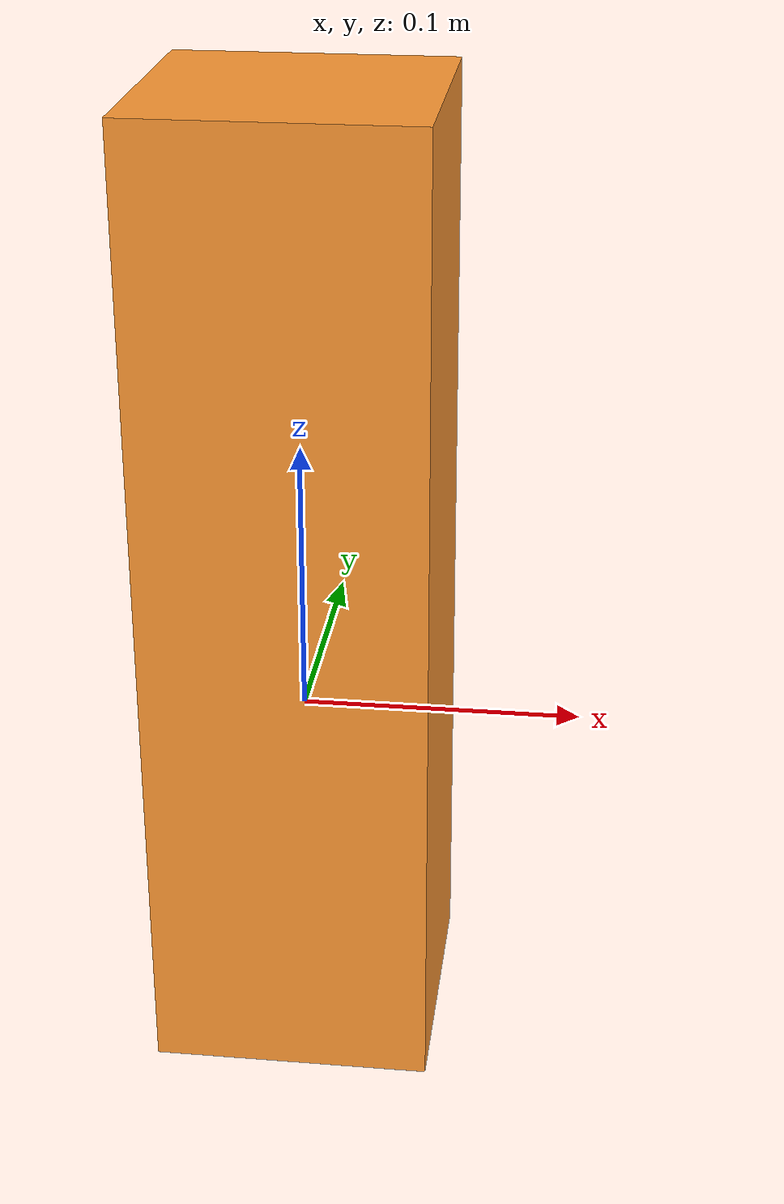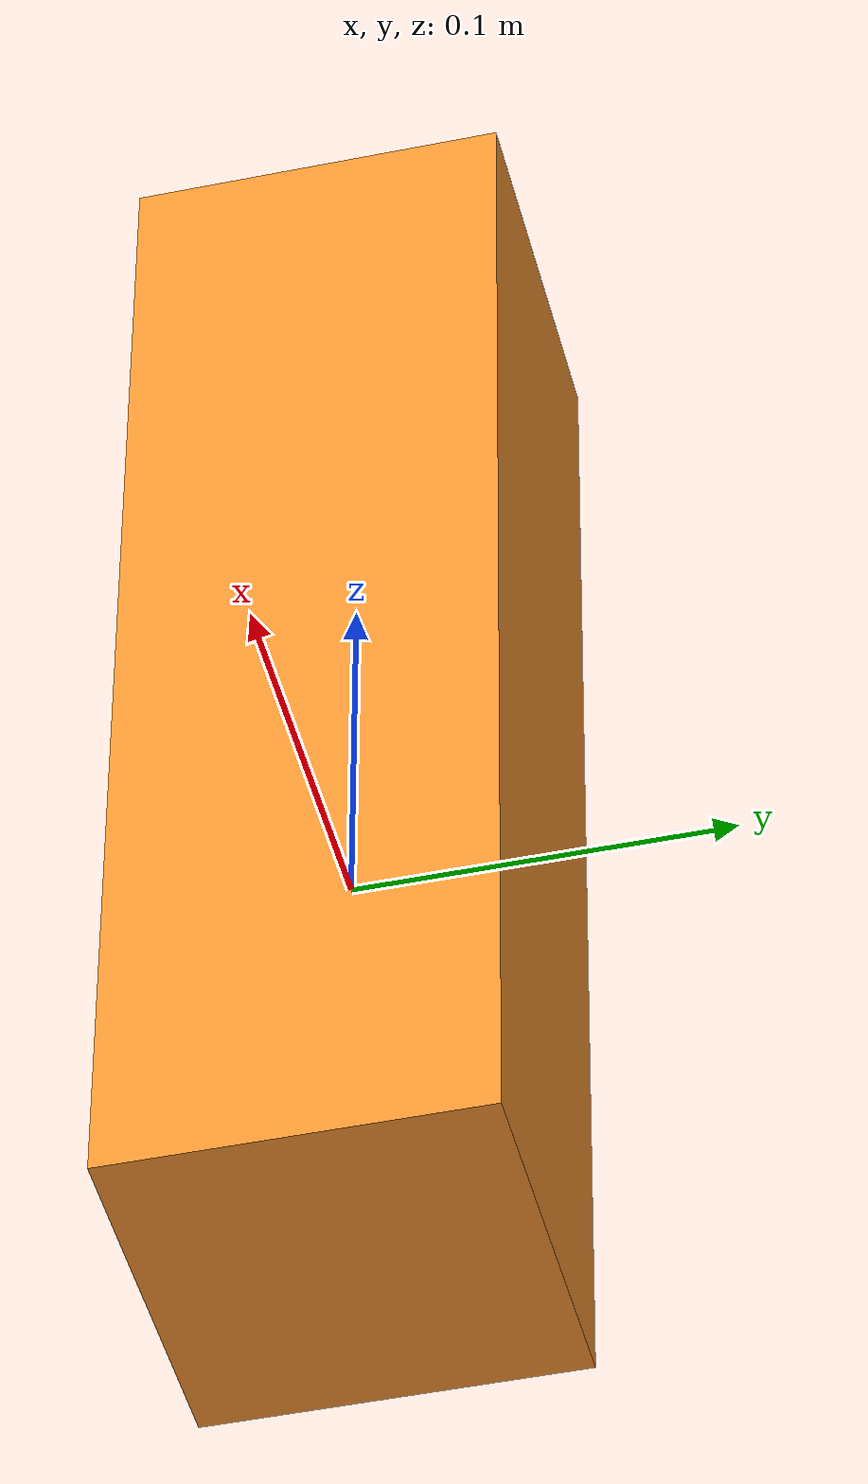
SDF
<!-- cuboid.sdf -->
<!-- Copy for Gazebo -->
<sdf version="1.6">
    <model name="cuboid">
    <pose>0 0 0.05 0 0 0</pose> <!-- z = half the height to raise the  from the ground -->
        <link name="link">
            <visual name="visual">
                <geometry>
                    <box><size>0.1 0.1 0.35</size></box>
                </geometry>
                <material>
                    <ambient>1 0.7 0.4 1</ambient>
                    <diffuse>1 0.6 0.2 1</diffuse>
                    <specular>0.15 0.12 0.1 1</specular>
                    <emissive>0 0 0 1</emissive>
                </material>
            </visual>
            <collision name="collision">
                <geometry>
                    <box><size>0.1 0.1 0.35</size></box>
                </geometry>
            </collision>
        </link>
        <plugin
        filename="gz-sim-pose-publisher-system"
        name="gz::sim::systems::PosePublisher">
        <use_pose_vector_msg>true</use_pose_vector_msg>
        <publish_nested_model_pose>true</publish_nested_model_pose>
      </plugin>
    </model>
</sdf>
